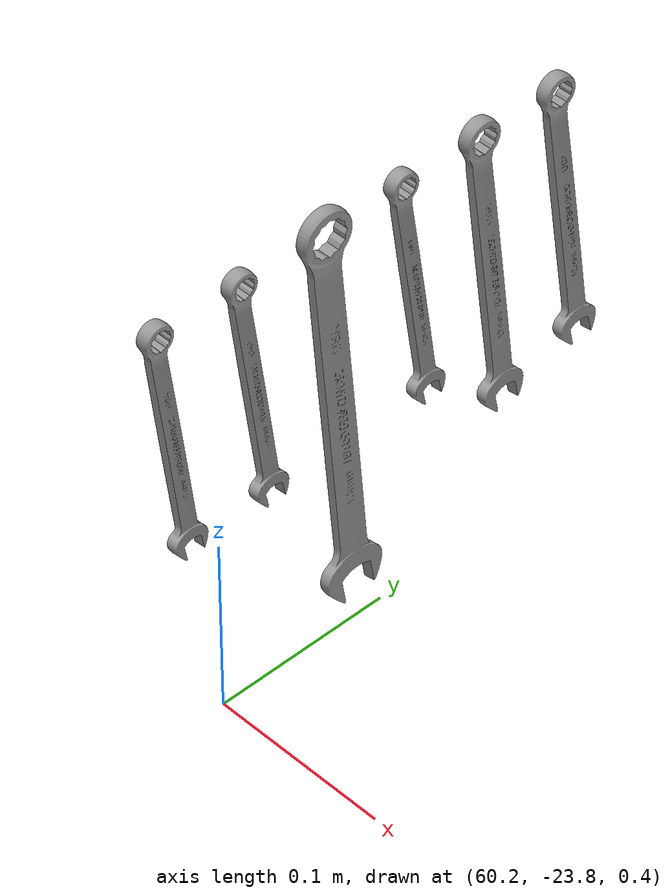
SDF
<sdf version="1.4">
 <world name="default">
  <physics type="ode"><gravity>0 0 -9.8</gravity></physics>
  <spherical_coordinates>
   <surface_model>EARTH_WGS84</surface_model>
   <latitude_deg>0</latitude_deg>
   <longitude_deg>0</longitude_deg>
   <elevation>0</elevation>
   <heading_deg>0</heading_deg>
  </spherical_coordinates>
  <scene><sky><clouds><speed>12</speed></clouds></sky></scene>
  <include><uri>model://sun</uri></include>
  <model name="wrench10">
   <pose>60.17 -23.75 0.54675 1.57079632679 0 1.57079632679</pose>
   <static>0</static>
   <link name="link">
    <inertial>
     <mass>0.0847</mass>
     <pose>0 0 0 -0.122173 0 0</pose>
     <inertia>
      <ixx>0.000185</ixx>
      <ixy>0.0000000</ixy>
      <ixz>-0.000000</ixz>
      <iyy>0.00000522</iyy>
      <iyz>-0.00000</iyz>
      <izz>0.000184</izz>
     </inertia>
    </inertial>
    <visual name="visual">
     <geometry><mesh><uri>file://wrench.DAE</uri><scale>0.77 0.77 1</scale></mesh></geometry>
     <material>
      <script><uri>file://media/materials/scripts/gazebo.material</uri><name>Gazebo/Grey</name></script>
      <shader type="pixel"><normal_map>__default__</normal_map></shader>
      <ambient>0.3 0.3 0.3 1</ambient>
      <diffuse>0.7 0.7 0.7 1</diffuse>
      <specular>0.01 0.01 0.01 1</specular>
      <emissive>0 0 0 1</emissive>
     </material>
    </visual>
    <collision name="collision">
     <geometry><mesh><uri>file://wrench.DAE</uri><scale>0.77 0.77 1</scale></mesh></geometry>
     <surface><friction><ode><mu>0.3</mu><mu2>0.3</mu2></ode></friction></surface>
    </collision>
   </link>
  </model>
  <model name="wrench12">
   <pose>60.17 -23.55 0.535 1.57079632679 0 1.57079632679</pose>
   <static>0</static>
   <link name="link">
    <inertial>
     <mass>0.0847</mass>
     <pose>0 0 0 -0.122173 0 0</pose>
     <inertia>
      <ixx>0.000185</ixx>
      <ixy>0.0000000</ixy>
      <ixz>-0.000000</ixz>
      <iyy>0.00000522</iyy>
      <iyz>-0.00000</iyz>
      <izz>0.000184</izz>
     </inertia>
    </inertial>
    <visual name="visual">
     <geometry><mesh><uri>file://wrench.DAE</uri><scale>0.92 0.92 1</scale></mesh></geometry>
     <material>
      <script><uri>file://media/materials/scripts/gazebo.material</uri><name>Gazebo/Grey</name></script>
      <shader type="pixel"><normal_map>__default__</normal_map></shader>
      <ambient>0.3 0.3 0.3 1</ambient>
      <diffuse>0.7 0.7 0.7 1</diffuse>
      <specular>0.01 0.01 0.01 1</specular>
      <emissive>0 0 0 1</emissive>
     </material>
    </visual>
    <collision name="collision">
     <geometry><mesh><uri>file://wrench.DAE</uri><scale>0.92 0.92 1</scale></mesh></geometry>
     <surface><friction><ode><mu>0.3</mu><mu2>0.3</mu2></ode></friction></surface>
    </collision>
   </link>
  </model>
  <model name="wrench13">
   <pose>60.17 -23.60 0.53 1.57079632679 0 1.57079632679</pose>
   <static>0</static>
   <link name="link">
    <inertial>
     <mass>0.0847</mass>
     <pose>0 0 0 -0.122173 0 0</pose>
     <inertia>
      <ixx>0.000185</ixx>
      <ixy>0.0000000</ixy>
      <ixz>-0.000000</ixz>
      <iyy>0.00000522</iyy>
      <iyz>-0.00000</iyz>
      <izz>0.000184</izz>
     </inertia>
    </inertial>
    <visual name="visual">
     <geometry><mesh><uri>file://wrench.DAE</uri><scale>1 1 1</scale></mesh></geometry>
     <material>
      <script><uri>file://media/materials/scripts/gazebo.material</uri><name>Gazebo/Grey</name></script>
      <shader type="pixel"><normal_map>__default__</normal_map></shader>
      <ambient>0.3 0.3 0.3 1</ambient>
      <diffuse>0.7 0.7 0.7 1</diffuse>
      <specular>0.01 0.01 0.01 1</specular>
      <emissive>0 0 0 1</emissive>
     </material>
    </visual>
    <collision name="collision">
     <geometry><mesh><uri>file://wrench.DAE</uri><scale>1 1 1</scale></mesh></geometry>
     <surface><friction><ode><mu>0.3</mu><mu2>0.3</mu2></ode></friction></surface>
    </collision>
   </link>
  </model>
  <model name="wrench18">
   <pose>60.172 -23.70 0.505 1.57079632679 0 1.57079632679</pose>
   <static>0</static>
   <link name="link">
    <inertial>
     <mass>0.3</mass>
     <pose>0 0 0 -0.122173 0 0</pose>
     <inertia>
      <ixx>1.185</ixx>
      <ixy>0.0000000</ixy>
      <ixz>-0.000000</ixz>
      <iyy>1.00522</iyy>
      <iyz>-0.00000</iyz>
      <izz>1.184</izz>
     </inertia>
    </inertial>
    <visual name="visual">
     <geometry><mesh><uri>file://wrench.DAE</uri><scale>1.38 1.38 1</scale></mesh></geometry>
     <material>
      <script><uri>file://media/materials/scripts/gazebo.material</uri><name>Gazebo/Grey</name></script>
      <shader type="pixel"><normal_map>__default__</normal_map></shader>
      <ambient>0.3 0.3 0.3 1</ambient>
      <diffuse>0.7 0.7 0.7 1</diffuse>
      <specular>0.01 0.01 0.01 1</specular>
      <emissive>0 0 0 1</emissive>
     </material>
    </visual>
    <collision name="collision">
     <geometry><mesh><uri>file://wrench.DAE</uri><scale>1.38 1.38 1</scale></mesh></geometry>
     <surface><friction><ode><mu>0.5</mu><mu2>0.5</mu2></ode></friction></surface>
    </collision>
   </link>
  </model>
  <model name="wrench11">
   <pose>60.17 -23.80 0.54675 1.57079632679 0 1.57079632679</pose>
   <static>0</static>
   <link name="link">
    <inertial>
     <mass>0.0847</mass>
     <pose>0 0 0 -0.122173 0 0</pose>
     <inertia>
      <ixx>0.000185</ixx>
      <ixy>0.0000000</ixy>
      <ixz>-0.000000</ixz>
      <iyy>0.00000522</iyy>
      <iyz>-0.00000</iyz>
      <izz>0.000184</izz>
     </inertia>
    </inertial>
    <visual name="visual">
     <geometry><mesh><uri>file://wrench.DAE</uri><scale>0.77 0.77 1</scale></mesh></geometry>
     <material>
      <script><uri>file://media/materials/scripts/gazebo.material</uri><name>Gazebo/Grey</name></script>
      <shader type="pixel"><normal_map>__default__</normal_map></shader>
      <ambient>0.3 0.3 0.3 1</ambient>
      <diffuse>0.7 0.7 0.7 1</diffuse>
      <specular>0.01 0.01 0.01 1</specular>
      <emissive>0 0 0 1</emissive>
     </material>
    </visual>
    <collision name="collision">
     <geometry><mesh><uri>file://wrench.DAE</uri><scale>0.77 0.77 1</scale></mesh></geometry>
     <surface><friction><ode><mu>0.3</mu><mu2>0.3</mu2></ode></friction></surface>
    </collision>
   </link>
  </model>
  <model name="wrench14">
   <pose>60.17 -23.65 0.54675 1.57079632679 0 1.57079632679</pose>
   <static>0</static>
   <link name="link">
    <inertial>
     <mass>0.0847</mass>
     <pose>0 0 0 -0.122173 0 0</pose>
     <inertia>
      <ixx>0.000185</ixx>
      <ixy>0.0000000</ixy>
      <ixz>-0.000000</ixz>
      <iyy>0.00000522</iyy>
      <iyz>-0.00000</iyz>
      <izz>0.000184</izz>
     </inertia>
    </inertial>
    <visual name="visual">
     <geometry><mesh><uri>file://wrench.DAE</uri><scale>0.77 0.77 1</scale></mesh></geometry>
     <material>
      <script><uri>file://media/materials/scripts/gazebo.material</uri><name>Gazebo/Grey</name></script>
      <shader type="pixel"><normal_map>__default__</normal_map></shader>
      <ambient>0.3 0.3 0.3 1</ambient>
      <diffuse>0.7 0.7 0.7 1</diffuse>
      <specular>0.01 0.01 0.01 1</specular>
      <emissive>0 0 0 1</emissive>
     </material>
    </visual>
    <collision name="collision">
     <geometry><mesh><uri>file://wrench.DAE</uri><scale>0.77 0.77 1</scale></mesh></geometry>
     <surface><friction><ode><mu>0.3</mu><mu2>0.3</mu2></ode></friction></surface>
    </collision>
   </link>
  </model>
 </world>
</sdf>
